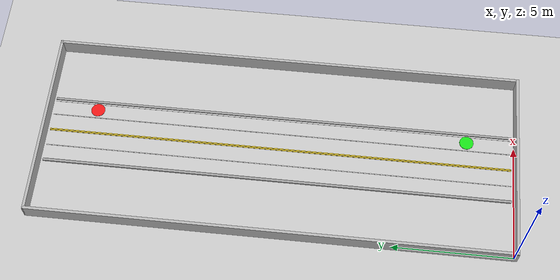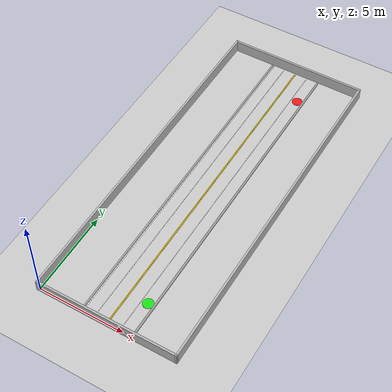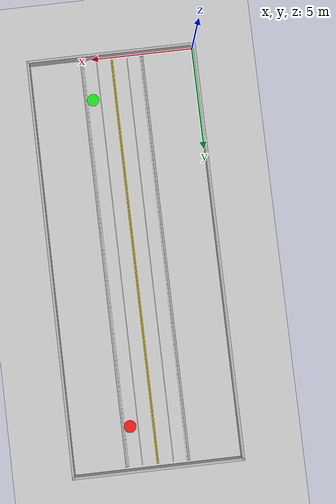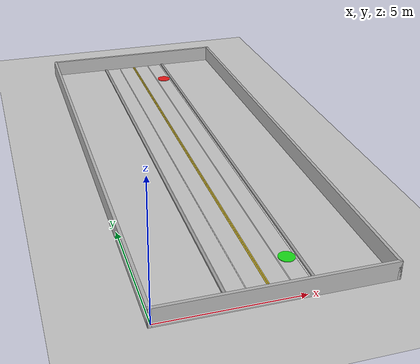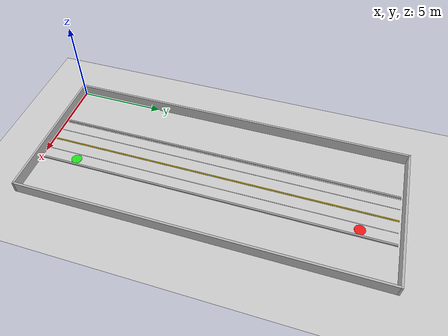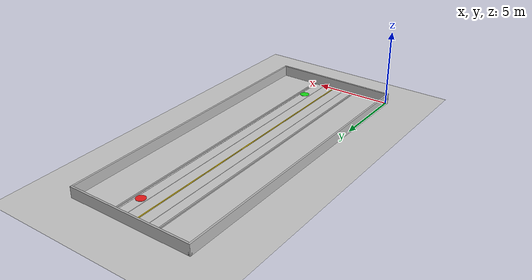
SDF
<?xml version="1.0" ?>
<sdf version="1.6">
  <world name="level0_road_straight_long_2way_2lane_each_8x20">
    <gravity>0 0 -9.8</gravity>
    <physics type="ode">
      <max_step_size>0.001</max_step_size>
      <real_time_factor>1.0</real_time_factor>
      <real_time_update_rate>1000</real_time_update_rate>
    </physics>

    <plugin name="gazebo_ros_state" filename="libgazebo_ros_state.so">
      <update_rate>50.0</update_rate>
    </plugin>

    <include><uri>model://sun</uri></include>
    <include><uri>model://ground_plane</uri></include>

    <!-- ===== Outer walls for 8×20 arena (inner boundary roughly x∈[0,8], y∈[0,20]) ===== -->
    <!-- Wall thickness=0.12, height=0.7 -->
    <model name="a820_wall_south"><static>true</static><pose>4.0 -0.06 0.35 0 0 0</pose>
      <link name="link">
        <collision name="c"><geometry><box><size>8.24 0.12 0.7</size></box></geometry></collision>
        <visual name="v"><geometry><box><size>8.24 0.12 0.7</size></box></geometry></visual>
      </link>
    </model>
    <model name="a820_wall_north"><static>true</static><pose>4.0 20.06 0.35 0 0 0</pose>
      <link name="link">
        <collision name="c"><geometry><box><size>8.24 0.12 0.7</size></box></geometry></collision>
        <visual name="v"><geometry><box><size>8.24 0.12 0.7</size></box></geometry></visual>
      </link>
    </model>
    <model name="a820_wall_west"><static>true</static><pose>-0.06 10.0 0.35 0 0 0</pose>
      <link name="link">
        <collision name="c"><geometry><box><size>0.12 20.24 0.7</size></box></geometry></collision>
        <visual name="v"><geometry><box><size>0.12 20.24 0.7</size></box></geometry></visual>
      </link>
    </model>
    <model name="a820_wall_east"><static>true</static><pose>8.06 10.0 0.35 0 0 0</pose>
      <link name="link">
        <collision name="c"><geometry><box><size>0.12 20.24 0.7</size></box></geometry></collision>
        <visual name="v"><geometry><box><size>0.12 20.24 0.7</size></box></geometry></visual>
      </link>
    </model>

    <!-- ===== Road geometry (center x=4.0) ===== -->
    <!-- Total carriageway width = 3.0m (half width 1.5m). Two lanes each side => lane width 0.75m. -->
    <!-- Curbs: width 0.10m, height 0.08m. Length 19.8m (y from 0.1 to 19.9). -->
    <!-- Curbs at x = 4 ± 1.5 = 2.5, 5.5 -->
    <model name="road4_curb_left"><static>true</static><pose>2.50 10.00 0.04 0 0 0</pose>
      <link name="link">
        <collision name="c"><geometry><box><size>0.10 19.80 0.08</size></box></geometry></collision>
        <visual name="v"><geometry><box><size>0.10 19.80 0.08</size></box></geometry>
          <material><ambient>0.55 0.55 0.55 1</ambient><diffuse>0.65 0.65 0.65 1</diffuse></material>
        </visual>
      </link>
    </model>
    <model name="road4_curb_right"><static>true</static><pose>5.50 10.00 0.04 0 0 0</pose>
      <link name="link">
        <collision name="c"><geometry><box><size>0.10 19.80 0.08</size></box></geometry></collision>
        <visual name="v"><geometry><box><size>0.10 19.80 0.08</size></box></geometry>
          <material><ambient>0.55 0.55 0.55 1</ambient><diffuse>0.65 0.65 0.65 1</diffuse></material>
        </visual>
      </link>
    </model>

    <!-- Edge lines (visual only), slightly inside curbs -->
    <model name="road4_edge_white_left"><static>true</static><pose>2.57 10.00 0.005 0 0 0</pose>
      <link name="link">
        <visual name="v">
          <geometry><box><size>0.06 19.80 0.01</size></box></geometry>
          <material><ambient>0.90 0.90 0.90 1</ambient><diffuse>0.98 0.98 0.98 1</diffuse></material>
        </visual>
      </link>
    </model>
    <model name="road4_edge_white_right"><static>true</static><pose>5.43 10.00 0.005 0 0 0</pose>
      <link name="link">
        <visual name="v">
          <geometry><box><size>0.06 19.80 0.01</size></box></geometry>
          <material><ambient>0.90 0.90 0.90 1</ambient><diffuse>0.98 0.98 0.98 1</diffuse></material>
        </visual>
      </link>
    </model>

    <!-- Double yellow center lines (visual only) -->
    <model name="road4_center_yellow_a"><static>true</static><pose>3.97 10.00 0.005 0 0 0</pose>
      <link name="link">
        <visual name="v">
          <geometry><box><size>0.04 19.80 0.01</size></box></geometry>
          <material><ambient>0.90 0.75 0.05 1</ambient><diffuse>0.95 0.82 0.10 1</diffuse></material>
        </visual>
      </link>
    </model>
    <model name="road4_center_yellow_b"><static>true</static><pose>4.03 10.00 0.005 0 0 0</pose>
      <link name="link">
        <visual name="v">
          <geometry><box><size>0.04 19.80 0.01</size></box></geometry>
          <material><ambient>0.90 0.75 0.05 1</ambient><diffuse>0.95 0.82 0.10 1</diffuse></material>
        </visual>
      </link>
    </model>

    <!-- Lane divider lines between the two lanes of each direction (visual only) -->
    <!-- Left side (southbound) divider at x = 4 - 0.75 = 3.25 -->
    <model name="road4_lane_div_left"><static>true</static><pose>3.25 10.00 0.005 0 0 0</pose>
      <link name="link">
        <visual name="v">
          <geometry><box><size>0.03 19.80 0.01</size></box></geometry>
          <material><ambient>0.90 0.90 0.90 1</ambient><diffuse>0.98 0.98 0.98 1</diffuse></material>
        </visual>
      </link>
    </model>
    <!-- Right side (northbound) divider at x = 4 + 0.75 = 4.75 -->
    <model name="road4_lane_div_right"><static>true</static><pose>4.75 10.00 0.005 0 0 0</pose>
      <link name="link">
        <visual name="v">
          <geometry><box><size>0.03 19.80 0.01</size></box></geometry>
          <material><ambient>0.90 0.90 0.90 1</ambient><diffuse>0.98 0.98 0.98 1</diffuse></material>
        </visual>
      </link>
    </model>

    <!-- Spawn/goal markers on the OUTER right lane center (x = 4 + 1.125 = 5.125) -->
    <model name="road4_start_marker"><static>true</static><pose>5.125 2.0 0.01 0 0 0</pose>
      <link name="link"><visual name="visual"><geometry><cylinder><radius>0.30</radius><length>0.02</length></cylinder></geometry>
        <material><ambient>0.1 0.8 0.1 1</ambient><diffuse>0.1 0.9 0.1 1</diffuse></material></visual></link></model>
    <model name="road4_goal_marker"><static>true</static><pose>5.125 18.0 0.01 0 0 0</pose>
      <link name="link"><visual name="visual"><geometry><cylinder><radius>0.30</radius><length>0.02</length></cylinder></geometry>
        <material><ambient>0.85 0.1 0.1 1</ambient><diffuse>0.95 0.1 0.1 1</diffuse></material></visual></link></model>

    <gui fullscreen="0"><camera name="user_camera"><pose>4 -18 18 0 0.55 1.57</pose></camera></gui>
  </world>
</sdf>
